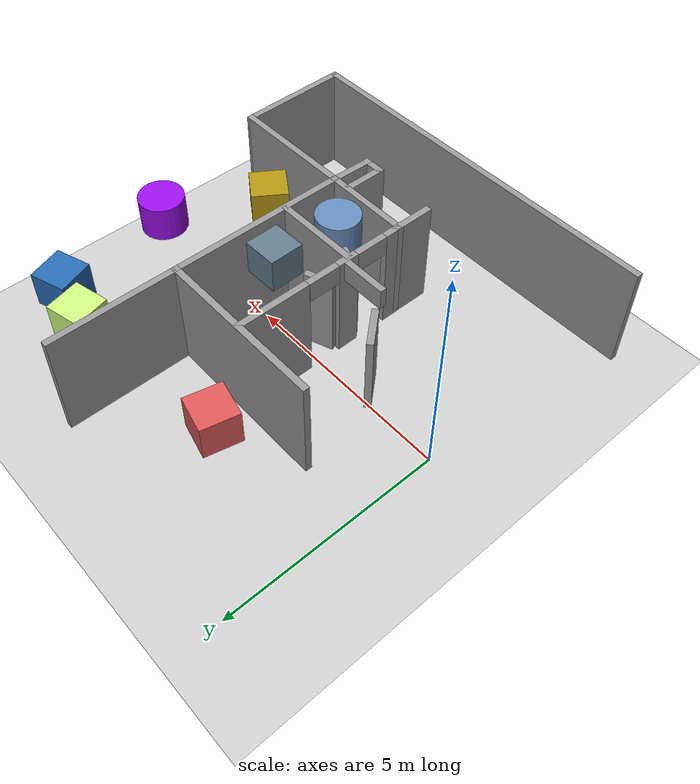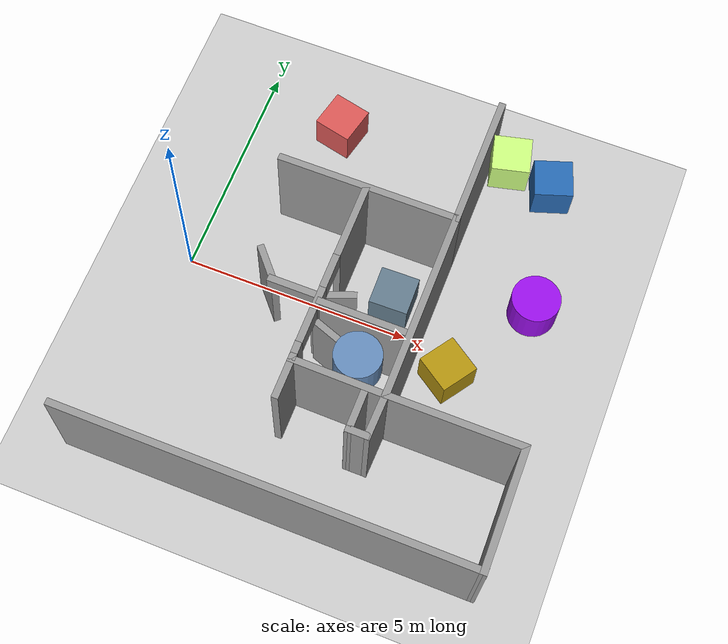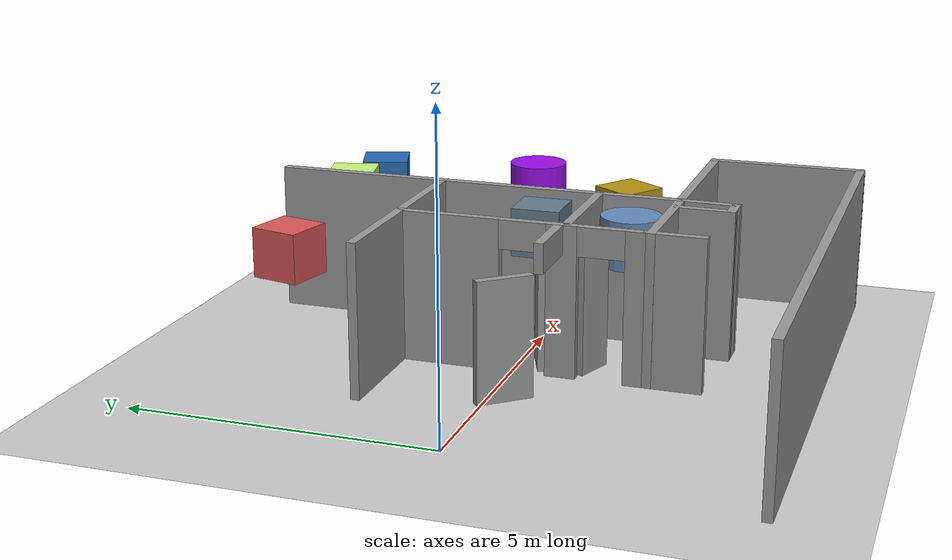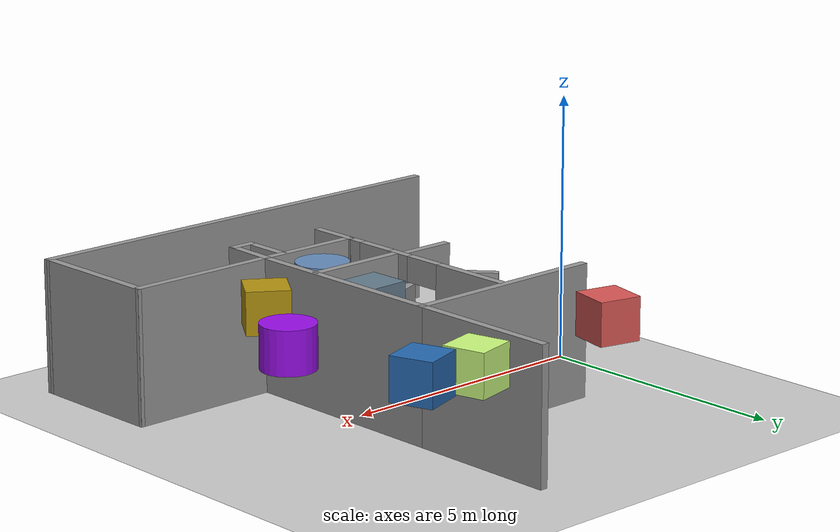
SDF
<sdf version="1.7">
 <world name="default">
  <model name="demo_clean">
   <static>1</static>
   <link name="Wall_10">
    <collision name="Wall_10_Collision">
     <geometry><box><size>3 0.15 2.5</size></box></geometry>
     <pose>0 0 1.25 0 -0 0</pose>
     <surface>
      <friction>
       <ode><mu>1</mu><mu2>1</mu2><fdir1>0 0 0</fdir1><slip1>0</slip1><slip2>0</slip2></ode>
       <torsional>
        <coefficient>1</coefficient>
        <patch_radius>0</patch_radius>
        <surface_radius>0</surface_radius>
        <use_patch_radius>1</use_patch_radius>
        <ode><slip>0</slip></ode>
       </torsional>
      </friction>
      <bounce><restitution_coefficient>0</restitution_coefficient><threshold>1e+06</threshold></bounce>
      <contact>
       <collide_without_contact>0</collide_without_contact>
       <collide_without_contact_bitmask>1</collide_without_contact_bitmask>
       <collide_bitmask>1</collide_bitmask>
       <ode>
        <soft_cfm>0</soft_cfm>
        <soft_erp>0.2</soft_erp>
        <kp>1e+13</kp>
        <kd>1</kd>
        <max_vel>0.01</max_vel>
        <min_depth>0</min_depth>
       </ode>
       <bullet>
        <split_impulse>1</split_impulse>
        <split_impulse_penetration_threshold>-0.01</split_impulse_penetration_threshold>
        <soft_cfm>0</soft_cfm>
        <soft_erp>0.2</soft_erp>
        <kp>1e+13</kp>
        <kd>1</kd>
       </bullet>
      </contact>
     </surface>
    </collision>
    <visual name="Wall_10_Visual">
     <geometry><box><size>3 0.15 2.5</size></box></geometry>
     <material>
      <script><name>Gazebo/Grey</name><uri>file://media/materials/scripts/gazebo.material</uri></script>
      <ambient>1 1 1 1</ambient>
      <shader type="pixel"><normal_map>default</normal_map></shader>
     </material>
     <pose>0 0 1.25 0 -0 0</pose>
    </visual>
    <pose>5.30351 3.31618 0 0 0 -1.5708</pose>
   </link>
   <link name="Wall_11">
    <collision name="Wall_11_Collision">
     <geometry><box><size>4 0.15 2.5</size></box></geometry>
     <pose>0 0 1.25 0 -0 0</pose>
     <surface>
      <friction>
       <ode><mu>1</mu><mu2>1</mu2><fdir1>0 0 0</fdir1><slip1>0</slip1><slip2>0</slip2></ode>
       <torsional>
        <coefficient>1</coefficient>
        <patch_radius>0</patch_radius>
        <surface_radius>0</surface_radius>
        <use_patch_radius>1</use_patch_radius>
        <ode><slip>0</slip></ode>
       </torsional>
      </friction>
      <bounce><restitution_coefficient>0</restitution_coefficient><threshold>1e+06</threshold></bounce>
      <contact>
       <collide_without_contact>0</collide_without_contact>
       <collide_without_contact_bitmask>1</collide_without_contact_bitmask>
       <collide_bitmask>1</collide_bitmask>
       <ode>
        <soft_cfm>0</soft_cfm>
        <soft_erp>0.2</soft_erp>
        <kp>1e+13</kp>
        <kd>1</kd>
        <max_vel>0.01</max_vel>
        <min_depth>0</min_depth>
       </ode>
       <bullet>
        <split_impulse>1</split_impulse>
        <split_impulse_penetration_threshold>-0.01</split_impulse_penetration_threshold>
        <soft_cfm>0</soft_cfm>
        <soft_erp>0.2</soft_erp>
        <kp>1e+13</kp>
        <kd>1</kd>
       </bullet>
      </contact>
     </surface>
    </collision>
    <visual name="Wall_11_Visual">
     <geometry><box><size>4 0.15 2.5</size></box></geometry>
     <material>
      <script><name>Gazebo/Grey</name><uri>file://media/materials/scripts/gazebo.material</uri></script>
      <ambient>1 1 1 1</ambient>
      <shader type="pixel"><normal_map>default</normal_map></shader>
     </material>
     <pose>0 0 1.25 0 -0 0</pose>
    </visual>
    <pose>3.37851 1.89118 0 0 -0 3.14159</pose>
   </link>
   <link name="Wall_13">
    <collision name="Wall_13_Collision">
     <geometry><box><size>4.25 0.15 2.5</size></box></geometry>
     <pose>0 0 1.25 0 -0 0</pose>
     <surface>
      <friction>
       <ode><mu>1</mu><mu2>1</mu2><fdir1>0 0 0</fdir1><slip1>0</slip1><slip2>0</slip2></ode>
       <torsional>
        <coefficient>1</coefficient>
        <patch_radius>0</patch_radius>
        <surface_radius>0</surface_radius>
        <use_patch_radius>1</use_patch_radius>
        <ode><slip>0</slip></ode>
       </torsional>
      </friction>
      <bounce><restitution_coefficient>0</restitution_coefficient><threshold>1e+06</threshold></bounce>
      <contact>
       <collide_without_contact>0</collide_without_contact>
       <collide_without_contact_bitmask>1</collide_without_contact_bitmask>
       <collide_bitmask>1</collide_bitmask>
       <ode>
        <soft_cfm>0</soft_cfm>
        <soft_erp>0.2</soft_erp>
        <kp>1e+13</kp>
        <kd>1</kd>
        <max_vel>0.01</max_vel>
        <min_depth>0</min_depth>
       </ode>
       <bullet>
        <split_impulse>1</split_impulse>
        <split_impulse_penetration_threshold>-0.01</split_impulse_penetration_threshold>
        <soft_cfm>0</soft_cfm>
        <soft_erp>0.2</soft_erp>
        <kp>1e+13</kp>
        <kd>1</kd>
       </bullet>
      </contact>
     </surface>
    </collision>
    <visual name="Wall_13_Visual">
     <geometry><box><size>4.25 0.15 2.5</size></box></geometry>
     <material>
      <script><name>Gazebo/Grey</name><uri>file://media/materials/scripts/gazebo.material</uri></script>
      <ambient>1 1 1 1</ambient>
      <shader type="pixel"><normal_map>default</normal_map></shader>
     </material>
     <pose>0 0 1.25 0 -0 0</pose>
    </visual>
    <pose>5.30351 -0.158824 0 0 0 -1.5708</pose>
   </link>
   <link name="Wall_14">
    <collision name="Wall_14_Collision">
     <geometry><box><size>3 0.15 2.5</size></box></geometry>
     <pose>0 0 1.25 0 -0 0</pose>
     <surface>
      <friction>
       <ode><mu>1</mu><mu2>1</mu2><fdir1>0 0 0</fdir1><slip1>0</slip1><slip2>0</slip2></ode>
       <torsional>
        <coefficient>1</coefficient>
        <patch_radius>0</patch_radius>
        <surface_radius>0</surface_radius>
        <use_patch_radius>1</use_patch_radius>
        <ode><slip>0</slip></ode>
       </torsional>
      </friction>
      <bounce><restitution_coefficient>0</restitution_coefficient><threshold>1e+06</threshold></bounce>
      <contact>
       <collide_without_contact>0</collide_without_contact>
       <collide_without_contact_bitmask>1</collide_without_contact_bitmask>
       <collide_bitmask>1</collide_bitmask>
       <ode>
        <soft_cfm>0</soft_cfm>
        <soft_erp>0.2</soft_erp>
        <kp>1e+13</kp>
        <kd>1</kd>
        <max_vel>0.01</max_vel>
        <min_depth>0</min_depth>
       </ode>
       <bullet>
        <split_impulse>1</split_impulse>
        <split_impulse_penetration_threshold>-0.01</split_impulse_penetration_threshold>
        <soft_cfm>0</soft_cfm>
        <soft_erp>0.2</soft_erp>
        <kp>1e+13</kp>
        <kd>1</kd>
       </bullet>
      </contact>
     </surface>
    </collision>
    <visual name="Wall_14_Visual">
     <geometry><box><size>3 0.15 2.5</size></box></geometry>
     <material>
      <script><name>Gazebo/Grey</name><uri>file://media/materials/scripts/gazebo.material</uri></script>
      <ambient>1 1 1 1</ambient>
      <shader type="pixel"><normal_map>default</normal_map></shader>
     </material>
     <pose>0 0 1.25 0 -0 0</pose>
    </visual>
    <pose>6.72851 -2.20882 0 0 -0 0</pose>
   </link>
   <link name="Wall_15">
    <collision name="Wall_15_Collision">
     <geometry><box><size>2.6816 0.15 2.5</size></box></geometry>
     <pose>0 0 1.25 0 -0 0</pose>
     <surface>
      <friction>
       <ode><mu>1</mu><mu2>1</mu2><fdir1>0 0 0</fdir1><slip1>0</slip1><slip2>0</slip2></ode>
       <torsional>
        <coefficient>1</coefficient>
        <patch_radius>0</patch_radius>
        <surface_radius>0</surface_radius>
        <use_patch_radius>1</use_patch_radius>
        <ode><slip>0</slip></ode>
       </torsional>
      </friction>
      <bounce><restitution_coefficient>0</restitution_coefficient><threshold>1e+06</threshold></bounce>
      <contact>
       <collide_without_contact>0</collide_without_contact>
       <collide_without_contact_bitmask>1</collide_without_contact_bitmask>
       <collide_bitmask>1</collide_bitmask>
       <ode>
        <soft_cfm>0</soft_cfm>
        <soft_erp>0.2</soft_erp>
        <kp>1e+13</kp>
        <kd>1</kd>
        <max_vel>0.01</max_vel>
        <min_depth>0</min_depth>
       </ode>
       <bullet>
        <split_impulse>1</split_impulse>
        <split_impulse_penetration_threshold>-0.01</split_impulse_penetration_threshold>
        <soft_cfm>0</soft_cfm>
        <soft_erp>0.2</soft_erp>
        <kp>1e+13</kp>
        <kd>1</kd>
       </bullet>
      </contact>
     </surface>
    </collision>
    <visual name="Wall_15_Visual">
     <geometry><box><size>2.6816 0.15 2.5</size></box></geometry>
     <material>
      <script><name>Gazebo/Grey</name><uri>file://media/materials/scripts/gazebo.material</uri></script>
      <ambient>1 1 1 1</ambient>
      <shader type="pixel"><normal_map>default</normal_map></shader>
     </material>
     <pose>0 0 1.25 0 -0 0</pose>
    </visual>
    <pose>8.16988 -3.47452 0 0 0 -1.55787</pose>
   </link>
   <link name="Wall_16">
    <collision name="Wall_16_Collision">
     <geometry><box><size>9 0.15 2.5</size></box></geometry>
     <pose>0 0 1.25 0 -0 0</pose>
     <surface>
      <friction>
       <ode><mu>1</mu><mu2>1</mu2><fdir1>0 0 0</fdir1><slip1>0</slip1><slip2>0</slip2></ode>
       <torsional>
        <coefficient>1</coefficient>
        <patch_radius>0</patch_radius>
        <surface_radius>0</surface_radius>
        <use_patch_radius>1</use_patch_radius>
        <ode><slip>0</slip></ode>
       </torsional>
      </friction>
      <bounce><restitution_coefficient>0</restitution_coefficient><threshold>1e+06</threshold></bounce>
      <contact>
       <collide_without_contact>0</collide_without_contact>
       <collide_without_contact_bitmask>1</collide_without_contact_bitmask>
       <collide_bitmask>1</collide_bitmask>
       <ode>
        <soft_cfm>0</soft_cfm>
        <soft_erp>0.2</soft_erp>
        <kp>1e+13</kp>
        <kd>1</kd>
        <max_vel>0.01</max_vel>
        <min_depth>0</min_depth>
       </ode>
       <bullet>
        <split_impulse>1</split_impulse>
        <split_impulse_penetration_threshold>-0.01</split_impulse_penetration_threshold>
        <soft_cfm>0</soft_cfm>
        <soft_erp>0.2</soft_erp>
        <kp>1e+13</kp>
        <kd>1</kd>
       </bullet>
      </contact>
     </surface>
    </collision>
    <visual name="Wall_16_Visual">
     <geometry><box><size>9 0.15 2.5</size></box></geometry>
     <material>
      <script><name>Gazebo/Grey</name><uri>file://media/materials/scripts/gazebo.material</uri></script>
      <ambient>1 1 1 1</ambient>
      <shader type="pixel"><normal_map>default</normal_map></shader>
     </material>
     <pose>0 0 1.25 0 -0 0</pose>
    </visual>
    <pose>3.76125 -4.74021 0 0 -0 3.14159</pose>
   </link>
   <link name="Wall_21_clone_0_clone_0_clone_clone_clone_clone">
    <gravity>0</gravity>
    <collision name="Wall_21_Collision">
     <geometry><box><size>0.924919 0.15 1.96033</size></box></geometry>
     <pose>0 0 1.25 0 -0 0</pose>
     <surface>
      <friction>
       <ode><mu>1</mu><mu2>1</mu2><fdir1>0 0 0</fdir1><slip1>0</slip1><slip2>0</slip2></ode>
       <torsional>
        <coefficient>1</coefficient>
        <patch_radius>0</patch_radius>
        <surface_radius>0</surface_radius>
        <use_patch_radius>1</use_patch_radius>
        <ode><slip>0</slip></ode>
       </torsional>
      </friction>
      <bounce><restitution_coefficient>0</restitution_coefficient><threshold>1e+06</threshold></bounce>
      <contact>
       <collide_without_contact>0</collide_without_contact>
       <collide_without_contact_bitmask>1</collide_without_contact_bitmask>
       <collide_bitmask>1</collide_bitmask>
       <ode>
        <soft_cfm>0</soft_cfm>
        <soft_erp>0.2</soft_erp>
        <kp>1e+13</kp>
        <kd>1</kd>
        <max_vel>0.01</max_vel>
        <min_depth>0</min_depth>
       </ode>
       <bullet>
        <split_impulse>1</split_impulse>
        <split_impulse_penetration_threshold>-0.01</split_impulse_penetration_threshold>
        <soft_cfm>0</soft_cfm>
        <soft_erp>0.2</soft_erp>
        <kp>1e+13</kp>
        <kd>1</kd>
       </bullet>
      </contact>
     </surface>
    </collision>
    <visual name="Wall_21_Visual">
     <geometry><box><size>0.924919 0.15 1.96033</size></box></geometry>
     <material>
      <script><name>Gazebo/Grey</name><uri>file://media/materials/scripts/gazebo.material</uri></script>
      <ambient>1 1 1 1</ambient>
      <shader type="pixel"><normal_map>__default__</normal_map></shader>
      <diffuse>0.7 0.7 0.7 1</diffuse>
      <specular>0.01 0.01 0.01 1</specular>
      <emissive>0 0 0 1</emissive>
     </material>
     <pose>0 0 1.25 0 -0 0</pose>
    </visual>
    <inertial>
     <inertia><ixx>0</ixx><iyy>0</iyy><izz>0</izz><ixy>0</ixy><ixz>0</ixz><iyz>0</iyz></inertia>
     <mass>1</mass>
    </inertial>
    <pose>2.0073 -0.280742 -0.23202 0 -0 2.28452</pose>
   </link>
   <link name="Wall_21_clone_0_clone_0_clone_clone_clone_clone_clone_clone_clone_clone">
    <gravity>0</gravity>
    <collision name="Wall_21_Collision">
     <geometry><box><size>0.663949 0.15 1.96033</size></box></geometry>
     <pose>0 0 1.25 0 -0 0</pose>
     <surface>
      <friction>
       <ode><mu>1</mu><mu2>1</mu2><fdir1>0 0 0</fdir1><slip1>0</slip1><slip2>0</slip2></ode>
       <torsional>
        <coefficient>1</coefficient>
        <patch_radius>0</patch_radius>
        <surface_radius>0</surface_radius>
        <use_patch_radius>1</use_patch_radius>
        <ode><slip>0</slip></ode>
       </torsional>
      </friction>
      <bounce><restitution_coefficient>0</restitution_coefficient><threshold>1e+06</threshold></bounce>
      <contact>
       <collide_without_contact>0</collide_without_contact>
       <collide_without_contact_bitmask>1</collide_without_contact_bitmask>
       <collide_bitmask>1</collide_bitmask>
       <ode>
        <soft_cfm>0</soft_cfm>
        <soft_erp>0.2</soft_erp>
        <kp>1e+13</kp>
        <kd>1</kd>
        <max_vel>0.01</max_vel>
        <min_depth>0</min_depth>
       </ode>
       <bullet>
        <split_impulse>1</split_impulse>
        <split_impulse_penetration_threshold>-0.01</split_impulse_penetration_threshold>
        <soft_cfm>0</soft_cfm>
        <soft_erp>0.2</soft_erp>
        <kp>1e+13</kp>
        <kd>1</kd>
       </bullet>
      </contact>
     </surface>
    </collision>
    <visual name="Wall_21_Visual">
     <geometry><box><size>0.663949 0.15 1.96033</size></box></geometry>
     <material>
      <script><name>Gazebo/Grey</name><uri>file://media/materials/scripts/gazebo.material</uri></script>
      <ambient>1 1 1 1</ambient>
      <shader type="pixel"><normal_map>__default__</normal_map></shader>
      <diffuse>0.7 0.7 0.7 1</diffuse>
      <specular>0.01 0.01 0.01 1</specular>
      <emissive>0 0 0 1</emissive>
     </material>
     <pose>0 0 1.25 0 -0 0</pose>
    </visual>
    <inertial>
     <inertia><ixx>0</ixx><iyy>0</iyy><izz>0</izz><ixy>0</ixy><ixz>0</ixz><iyz>0</iyz></inertia>
     <mass>1</mass>
    </inertial>
    <pose>3.68306 -1.18793 -0.23202 0 -0 2.79384</pose>
   </link>
   <link name="Wall_21_clone_0_clone_0_clone_clone_clone_clone_clone_clone_clone_clone_clone_clone">
    <gravity>0</gravity>
    <collision name="Wall_21_Collision">
     <geometry><box><size>0.663949 0.15 1.96033</size></box></geometry>
     <pose>0 0 1.25 0 -0 0</pose>
     <surface>
      <friction>
       <ode><mu>1</mu><mu2>1</mu2><fdir1>0 0 0</fdir1><slip1>0</slip1><slip2>0</slip2></ode>
       <torsional>
        <coefficient>1</coefficient>
        <patch_radius>0</patch_radius>
        <surface_radius>0</surface_radius>
        <use_patch_radius>1</use_patch_radius>
        <ode><slip>0</slip></ode>
       </torsional>
      </friction>
      <bounce><restitution_coefficient>0</restitution_coefficient><threshold>1e+06</threshold></bounce>
      <contact>
       <collide_without_contact>0</collide_without_contact>
       <collide_without_contact_bitmask>1</collide_without_contact_bitmask>
       <collide_bitmask>1</collide_bitmask>
       <ode>
        <soft_cfm>0</soft_cfm>
        <soft_erp>0.2</soft_erp>
        <kp>1e+13</kp>
        <kd>1</kd>
        <max_vel>0.01</max_vel>
        <min_depth>0</min_depth>
       </ode>
       <bullet>
        <split_impulse>1</split_impulse>
        <split_impulse_penetration_threshold>-0.01</split_impulse_penetration_threshold>
        <soft_cfm>0</soft_cfm>
        <soft_erp>0.2</soft_erp>
        <kp>1e+13</kp>
        <kd>1</kd>
       </bullet>
      </contact>
     </surface>
    </collision>
    <visual name="Wall_21_Visual">
     <geometry><box><size>0.663949 0.15 1.96033</size></box></geometry>
     <material>
      <script><name>Gazebo/Grey</name><uri>file://media/materials/scripts/gazebo.material</uri></script>
      <ambient>1 1 1 1</ambient>
      <shader type="pixel"><normal_map>__default__</normal_map></shader>
      <diffuse>0.7 0.7 0.7 1</diffuse>
      <specular>0.01 0.01 0.01 1</specular>
      <emissive>0 0 0 1</emissive>
     </material>
     <pose>0 0 1.25 0 -0 0</pose>
    </visual>
    <inertial>
     <inertia><ixx>0</ixx><iyy>0</iyy><izz>0</izz><ixy>0</ixy><ixz>0</ixz><iyz>0</iyz></inertia>
     <mass>1</mass>
    </inertial>
    <pose>3.65792 -0.364043 -0.23202 0 0 -2.77941</pose>
   </link>
   <link name="Wall_28_clone">
    <gravity>0</gravity>
    <collision name="Wall_28_Collision">
     <geometry><box><size>1.03415 0.15 0.476648</size></box></geometry>
     <pose>0 0 1.25 0 -0 0</pose>
     <surface>
      <friction>
       <ode><mu>1</mu><mu2>1</mu2><fdir1>0 0 0</fdir1><slip1>0</slip1><slip2>0</slip2></ode>
       <torsional>
        <coefficient>1</coefficient>
        <patch_radius>0</patch_radius>
        <surface_radius>0</surface_radius>
        <use_patch_radius>1</use_patch_radius>
        <ode><slip>0</slip></ode>
       </torsional>
      </friction>
      <bounce><restitution_coefficient>0</restitution_coefficient><threshold>1e+06</threshold></bounce>
      <contact>
       <collide_without_contact>0</collide_without_contact>
       <collide_without_contact_bitmask>1</collide_without_contact_bitmask>
       <collide_bitmask>1</collide_bitmask>
       <ode>
        <soft_cfm>0</soft_cfm>
        <soft_erp>0.2</soft_erp>
        <kp>1e+13</kp>
        <kd>1</kd>
        <max_vel>0.01</max_vel>
        <min_depth>0</min_depth>
       </ode>
       <bullet>
        <split_impulse>1</split_impulse>
        <split_impulse_penetration_threshold>-0.01</split_impulse_penetration_threshold>
        <soft_cfm>0</soft_cfm>
        <soft_erp>0.2</soft_erp>
        <kp>1e+13</kp>
        <kd>1</kd>
       </bullet>
      </contact>
     </surface>
    </collision>
    <visual name="Wall_28_Visual">
     <geometry><box><size>1.03415 0.15 0.476648</size></box></geometry>
     <material>
      <script><name>Gazebo/Grey</name><uri>file://media/materials/scripts/gazebo.material</uri></script>
      <ambient>1 1 1 1</ambient>
      <shader type="pixel"><normal_map>__default__</normal_map></shader>
      <diffuse>0.7 0.7 0.7 1</diffuse>
      <specular>0.01 0.01 0.01 1</specular>
      <emissive>0 0 0 1</emissive>
     </material>
     <pose>0 0 1.25 0 -0 0</pose>
    </visual>
    <inertial>
     <inertia><ixx>0</ixx><iyy>0</iyy><izz>0</izz><ixy>0</ixy><ixz>0</ixz><iyz>0</iyz></inertia>
     <mass>1</mass>
    </inertial>
    <pose>2.7476 -0.745235 1.01168 0 -0 0</pose>
   </link>
   <link name="Wall_28_clone_clone_clone_clone">
    <gravity>0</gravity>
    <collision name="Wall_28_Collision">
     <geometry><box><size>0.765639 0.15 0.476648</size></box></geometry>
     <pose>0 0 1.25 0 -0 0</pose>
     <surface>
      <friction>
       <ode><mu>1</mu><mu2>1</mu2><fdir1>0 0 0</fdir1><slip1>0</slip1><slip2>0</slip2></ode>
       <torsional>
        <coefficient>1</coefficient>
        <patch_radius>0</patch_radius>
        <surface_radius>0</surface_radius>
        <use_patch_radius>1</use_patch_radius>
        <ode><slip>0</slip></ode>
       </torsional>
      </friction>
      <bounce><restitution_coefficient>0</restitution_coefficient><threshold>1e+06</threshold></bounce>
      <contact>
       <collide_without_contact>0</collide_without_contact>
       <collide_without_contact_bitmask>1</collide_without_contact_bitmask>
       <collide_bitmask>1</collide_bitmask>
       <ode>
        <soft_cfm>0</soft_cfm>
        <soft_erp>0.2</soft_erp>
        <kp>1e+13</kp>
        <kd>1</kd>
        <max_vel>0.01</max_vel>
        <min_depth>0</min_depth>
       </ode>
       <bullet>
        <split_impulse>1</split_impulse>
        <split_impulse_penetration_threshold>-0.01</split_impulse_penetration_threshold>
        <soft_cfm>0</soft_cfm>
        <soft_erp>0.2</soft_erp>
        <kp>1e+13</kp>
        <kd>1</kd>
       </bullet>
      </contact>
     </surface>
    </collision>
    <visual name="Wall_28_Visual">
     <geometry><box><size>0.765639 0.15 0.476648</size></box></geometry>
     <material>
      <script><name>Gazebo/Grey</name><uri>file://media/materials/scripts/gazebo.material</uri></script>
      <ambient>1 1 1 1</ambient>
      <shader type="pixel"><normal_map>__default__</normal_map></shader>
     </material>
     <pose>0 0 1.25 0 -0 0</pose>
    </visual>
    <inertial>
     <inertia><ixx>0</ixx><iyy>0</iyy><izz>0</izz><ixy>0</ixy><ixz>0</ixz><iyz>0</iyz></inertia>
     <mass>1</mass>
    </inertial>
    <pose>3.33099 -1.42343 1.01168 0 0 -1.57004</pose>
   </link>
   <link name="Wall_28_clone_clone_clone_clone_clone">
    <gravity>0</gravity>
    <collision name="Wall_28_Collision">
     <geometry><box><size>0.765639 0.15 0.476648</size></box></geometry>
     <pose>0 0 1.25 0 -0 0</pose>
     <surface>
      <friction>
       <ode><mu>1</mu><mu2>1</mu2><fdir1>0 0 0</fdir1><slip1>0</slip1><slip2>0</slip2></ode>
       <torsional>
        <coefficient>1</coefficient>
        <patch_radius>0</patch_radius>
        <surface_radius>0</surface_radius>
        <use_patch_radius>1</use_patch_radius>
        <ode><slip>0</slip></ode>
       </torsional>
      </friction>
      <bounce><restitution_coefficient>0</restitution_coefficient><threshold>1e+06</threshold></bounce>
      <contact>
       <collide_without_contact>0</collide_without_contact>
       <collide_without_contact_bitmask>1</collide_without_contact_bitmask>
       <collide_bitmask>1</collide_bitmask>
       <ode>
        <soft_cfm>0</soft_cfm>
        <soft_erp>0.2</soft_erp>
        <kp>1e+13</kp>
        <kd>1</kd>
        <max_vel>0.01</max_vel>
        <min_depth>0</min_depth>
       </ode>
       <bullet>
        <split_impulse>1</split_impulse>
        <split_impulse_penetration_threshold>-0.01</split_impulse_penetration_threshold>
        <soft_cfm>0</soft_cfm>
        <soft_erp>0.2</soft_erp>
        <kp>1e+13</kp>
        <kd>1</kd>
       </bullet>
      </contact>
     </surface>
    </collision>
    <visual name="Wall_28_Visual">
     <geometry><box><size>0.765639 0.15 0.476648</size></box></geometry>
     <material>
      <script><name>Gazebo/Grey</name><uri>file://media/materials/scripts/gazebo.material</uri></script>
      <ambient>1 1 1 1</ambient>
      <shader type="pixel"><normal_map>__default__</normal_map></shader>
     </material>
     <pose>0 0 1.25 0 -0 0</pose>
    </visual>
    <inertial>
     <inertia><ixx>0</ixx><iyy>0</iyy><izz>0</izz><ixy>0</ixy><ixz>0</ixz><iyz>0</iyz></inertia>
     <mass>1</mass>
    </inertial>
    <pose>3.33099 -0.160303 1.01168 0 0 -1.57004</pose>
   </link>
   <link name="Wall_30">
    <collision name="Wall_30_Collision">
     <geometry><box><size>0.5 0.15 2.5</size></box></geometry>
     <pose>0 0 1.25 0 -0 0</pose>
     <surface>
      <friction>
       <ode><mu>1</mu><mu2>1</mu2><fdir1>0 0 0</fdir1><slip1>0</slip1><slip2>0</slip2></ode>
       <torsional>
        <coefficient>1</coefficient>
        <patch_radius>0</patch_radius>
        <surface_radius>0</surface_radius>
        <use_patch_radius>1</use_patch_radius>
        <ode><slip>0</slip></ode>
       </torsional>
      </friction>
      <bounce><restitution_coefficient>0</restitution_coefficient><threshold>1e+06</threshold></bounce>
      <contact>
       <collide_without_contact>0</collide_without_contact>
       <collide_without_contact_bitmask>1</collide_without_contact_bitmask>
       <collide_bitmask>1</collide_bitmask>
       <ode>
        <soft_cfm>0</soft_cfm>
        <soft_erp>0.2</soft_erp>
        <kp>1e+13</kp>
        <kd>1</kd>
        <max_vel>0.01</max_vel>
        <min_depth>0</min_depth>
       </ode>
       <bullet>
        <split_impulse>1</split_impulse>
        <split_impulse_penetration_threshold>-0.01</split_impulse_penetration_threshold>
        <soft_cfm>0</soft_cfm>
        <soft_erp>0.2</soft_erp>
        <kp>1e+13</kp>
        <kd>1</kd>
       </bullet>
      </contact>
     </surface>
    </collision>
    <visual name="Wall_30_Visual">
     <geometry><box><size>0.5 0.15 2.5</size></box></geometry>
     <material>
      <script><name>Gazebo/Grey</name><uri>file://media/materials/scripts/gazebo.material</uri></script>
      <ambient>1 1 1 1</ambient>
      <shader type="pixel"><normal_map>default</normal_map></shader>
     </material>
     <pose>0 0 1.25 0 -0 0</pose>
    </visual>
    <pose>3.33603 -0.791518 0 0 0 -1.5708</pose>
   </link>
   <link name="Wall_33">
    <collision name="Wall_33_Collision">
     <geometry><box><size>2 0.15 2.5</size></box></geometry>
     <pose>0 0 1.25 0 -0 0</pose>
     <surface>
      <friction>
       <ode><mu>1</mu><mu2>1</mu2><fdir1>0 0 0</fdir1><slip1>0</slip1><slip2>0</slip2></ode>
       <torsional>
        <coefficient>1</coefficient>
        <patch_radius>0</patch_radius>
        <surface_radius>0</surface_radius>
        <use_patch_radius>1</use_patch_radius>
        <ode><slip>0</slip></ode>
       </torsional>
      </friction>
      <bounce><restitution_coefficient>0</restitution_coefficient><threshold>1e+06</threshold></bounce>
      <contact>
       <collide_without_contact>0</collide_without_contact>
       <collide_without_contact_bitmask>1</collide_without_contact_bitmask>
       <collide_bitmask>1</collide_bitmask>
       <ode>
        <soft_cfm>0</soft_cfm>
        <soft_erp>0.2</soft_erp>
        <kp>1e+13</kp>
        <kd>1</kd>
        <max_vel>0.01</max_vel>
        <min_depth>0</min_depth>
       </ode>
       <bullet>
        <split_impulse>1</split_impulse>
        <split_impulse_penetration_threshold>-0.01</split_impulse_penetration_threshold>
        <soft_cfm>0</soft_cfm>
        <soft_erp>0.2</soft_erp>
        <kp>1e+13</kp>
        <kd>1</kd>
       </bullet>
      </contact>
     </surface>
    </collision>
    <visual name="Wall_33_Visual">
     <geometry><box><size>2 0.15 2.5</size></box></geometry>
     <material>
      <script><name>Gazebo/Grey</name><uri>file://media/materials/scripts/gazebo.material</uri></script>
      <ambient>1 1 1 1</ambient>
      <shader type="pixel"><normal_map>default</normal_map></shader>
     </material>
     <pose>0 0 1.25 0 -0 0</pose>
    </visual>
    <pose>4.32187 -0.846909 0 0 -0 3.14159</pose>
   </link>
   <link name="Wall_35">
    <collision name="Wall_35_Collision">
     <geometry><box><size>2.12444 0.15 2.5</size></box></geometry>
     <pose>0 0 1.25 0 -0 0</pose>
     <surface>
      <friction>
       <ode><mu>1</mu><mu2>1</mu2><fdir1>0 0 0</fdir1><slip1>0</slip1><slip2>0</slip2></ode>
       <torsional>
        <coefficient>1</coefficient>
        <patch_radius>0</patch_radius>
        <surface_radius>0</surface_radius>
        <use_patch_radius>1</use_patch_radius>
        <ode><slip>0</slip></ode>
       </torsional>
      </friction>
      <bounce><restitution_coefficient>0</restitution_coefficient><threshold>1e+06</threshold></bounce>
      <contact>
       <collide_without_contact>0</collide_without_contact>
       <collide_without_contact_bitmask>1</collide_without_contact_bitmask>
       <collide_bitmask>1</collide_bitmask>
       <ode>
        <soft_cfm>0</soft_cfm>
        <soft_erp>0.2</soft_erp>
        <kp>1e+13</kp>
        <kd>1</kd>
        <max_vel>0.01</max_vel>
        <min_depth>0</min_depth>
       </ode>
       <bullet>
        <split_impulse>1</split_impulse>
        <split_impulse_penetration_threshold>-0.01</split_impulse_penetration_threshold>
        <soft_cfm>0</soft_cfm>
        <soft_erp>0.2</soft_erp>
        <kp>1e+13</kp>
        <kd>1</kd>
       </bullet>
      </contact>
     </surface>
    </collision>
    <visual name="Wall_35_Visual">
     <geometry><box><size>2.12444 0.15 2.5</size></box></geometry>
     <material>
      <script><name>Gazebo/Grey</name><uri>file://media/materials/scripts/gazebo.material</uri></script>
      <ambient>1 1 1 1</ambient>
      <shader type="pixel"><normal_map>default</normal_map></shader>
     </material>
     <pose>0 0 1.25 0 -0 0</pose>
    </visual>
    <pose>4.31686 -2.19973 0 0 -0 3.13123</pose>
   </link>
   <link name="Wall_40">
    <collision name="Wall_40_Collision">
     <geometry><box><size>1 0.15 2.5</size></box></geometry>
     <pose>0 0 1.25 0 -0 0</pose>
     <surface>
      <friction>
       <ode><mu>1</mu><mu2>1</mu2><fdir1>0 0 0</fdir1><slip1>0</slip1><slip2>0</slip2></ode>
       <torsional>
        <coefficient>1</coefficient>
        <patch_radius>0</patch_radius>
        <surface_radius>0</surface_radius>
        <use_patch_radius>1</use_patch_radius>
        <ode><slip>0</slip></ode>
       </torsional>
      </friction>
      <bounce><restitution_coefficient>0</restitution_coefficient><threshold>1e+06</threshold></bounce>
      <contact>
       <collide_without_contact>0</collide_without_contact>
       <collide_without_contact_bitmask>1</collide_without_contact_bitmask>
       <collide_bitmask>1</collide_bitmask>
       <ode>
        <soft_cfm>0</soft_cfm>
        <soft_erp>0.2</soft_erp>
        <kp>1e+13</kp>
        <kd>1</kd>
        <max_vel>0.01</max_vel>
        <min_depth>0</min_depth>
       </ode>
       <bullet>
        <split_impulse>1</split_impulse>
        <split_impulse_penetration_threshold>-0.01</split_impulse_penetration_threshold>
        <soft_cfm>0</soft_cfm>
        <soft_erp>0.2</soft_erp>
        <kp>1e+13</kp>
        <kd>1</kd>
       </bullet>
      </contact>
     </surface>
    </collision>
    <visual name="Wall_40_Visual">
     <geometry><box><size>1 0.15 2.5</size></box></geometry>
     <material>
      <script><name>Gazebo/Grey</name><uri>file://media/materials/scripts/gazebo.material</uri></script>
      <ambient>1 1 1 1</ambient>
      <shader type="pixel"><normal_map>default</normal_map></shader>
     </material>
     <pose>0 0 1.25 0 -0 0</pose>
    </visual>
    <pose>4.89119 -2.69073 0 0 0 -1.57324</pose>
   </link>
   <link name="Wall_41">
    <collision name="Wall_41_Collision">
     <geometry><box><size>0.5 0.15 2.5</size></box></geometry>
     <pose>0 0 1.25 0 -0 0</pose>
     <surface>
      <friction>
       <ode><mu>1</mu><mu2>1</mu2><fdir1>0 0 0</fdir1><slip1>0</slip1><slip2>0</slip2></ode>
       <torsional>
        <coefficient>1</coefficient>
        <patch_radius>0</patch_radius>
        <surface_radius>0</surface_radius>
        <use_patch_radius>1</use_patch_radius>
        <ode><slip>0</slip></ode>
       </torsional>
      </friction>
      <bounce><restitution_coefficient>0</restitution_coefficient><threshold>1e+06</threshold></bounce>
      <contact>
       <collide_without_contact>0</collide_without_contact>
       <collide_without_contact_bitmask>1</collide_without_contact_bitmask>
       <collide_bitmask>1</collide_bitmask>
       <ode>
        <soft_cfm>0</soft_cfm>
        <soft_erp>0.2</soft_erp>
        <kp>1e+13</kp>
        <kd>1</kd>
        <max_vel>0.01</max_vel>
        <min_depth>0</min_depth>
       </ode>
       <bullet>
        <split_impulse>1</split_impulse>
        <split_impulse_penetration_threshold>-0.01</split_impulse_penetration_threshold>
        <soft_cfm>0</soft_cfm>
        <soft_erp>0.2</soft_erp>
        <kp>1e+13</kp>
        <kd>1</kd>
       </bullet>
      </contact>
     </surface>
    </collision>
    <visual name="Wall_41_Visual">
     <geometry><box><size>0.5 0.15 2.5</size></box></geometry>
     <material>
      <script><name>Gazebo/Grey</name><uri>file://media/materials/scripts/gazebo.material</uri></script>
      <ambient>1 1 1 1</ambient>
      <shader type="pixel"><normal_map>default</normal_map></shader>
     </material>
     <pose>0 0 1.25 0 -0 0</pose>
    </visual>
    <pose>5.06619 -3.11573 0 0 -0 0</pose>
   </link>
   <link name="Wall_42">
    <collision name="Wall_42_Collision">
     <geometry><box><size>1.05905 0.15 2.5</size></box></geometry>
     <pose>0 0 1.25 0 -0 0</pose>
     <surface>
      <friction>
       <ode><mu>1</mu><mu2>1</mu2><fdir1>0 0 0</fdir1><slip1>0</slip1><slip2>0</slip2></ode>
       <torsional>
        <coefficient>1</coefficient>
        <patch_radius>0</patch_radius>
        <surface_radius>0</surface_radius>
        <use_patch_radius>1</use_patch_radius>
        <ode><slip>0</slip></ode>
       </torsional>
      </friction>
      <bounce><restitution_coefficient>0</restitution_coefficient><threshold>1e+06</threshold></bounce>
      <contact>
       <collide_without_contact>0</collide_without_contact>
       <collide_without_contact_bitmask>1</collide_without_contact_bitmask>
       <collide_bitmask>1</collide_bitmask>
       <ode>
        <soft_cfm>0</soft_cfm>
        <soft_erp>0.2</soft_erp>
        <kp>1e+13</kp>
        <kd>1</kd>
        <max_vel>0.01</max_vel>
        <min_depth>0</min_depth>
       </ode>
       <bullet>
        <split_impulse>1</split_impulse>
        <split_impulse_penetration_threshold>-0.01</split_impulse_penetration_threshold>
        <soft_cfm>0</soft_cfm>
        <soft_erp>0.2</soft_erp>
        <kp>1e+13</kp>
        <kd>1</kd>
       </bullet>
      </contact>
     </surface>
    </collision>
    <visual name="Wall_42_Visual">
     <geometry><box><size>1.05905 0.15 2.5</size></box></geometry>
     <material>
      <script><name>Gazebo/Grey</name><uri>file://media/materials/scripts/gazebo.material</uri></script>
      <ambient>1 1 1 1</ambient>
      <shader type="pixel"><normal_map>default</normal_map></shader>
     </material>
     <pose>0 0 1.25 0 -0 0</pose>
    </visual>
    <pose>5.28364 -2.66264 0 0 -0 1.53905</pose>
   </link>
   <link name="Wall_46">
    <collision name="Wall_46_Collision">
     <geometry><box><size>1.75 0.15 2.5</size></box></geometry>
     <pose>0 0 1.25 0 -0 0</pose>
     <surface>
      <friction>
       <ode><mu>1</mu><mu2>1</mu2><fdir1>0 0 0</fdir1><slip1>0</slip1><slip2>0</slip2></ode>
       <torsional>
        <coefficient>1</coefficient>
        <patch_radius>0</patch_radius>
        <surface_radius>0</surface_radius>
        <use_patch_radius>1</use_patch_radius>
        <ode><slip>0</slip></ode>
       </torsional>
      </friction>
      <bounce><restitution_coefficient>0</restitution_coefficient><threshold>1e+06</threshold></bounce>
      <contact>
       <collide_without_contact>0</collide_without_contact>
       <collide_without_contact_bitmask>1</collide_without_contact_bitmask>
       <collide_bitmask>1</collide_bitmask>
       <ode>
        <soft_cfm>0</soft_cfm>
        <soft_erp>0.2</soft_erp>
        <kp>1e+13</kp>
        <kd>1</kd>
        <max_vel>0.01</max_vel>
        <min_depth>0</min_depth>
       </ode>
       <bullet>
        <split_impulse>1</split_impulse>
        <split_impulse_penetration_threshold>-0.01</split_impulse_penetration_threshold>
        <soft_cfm>0</soft_cfm>
        <soft_erp>0.2</soft_erp>
        <kp>1e+13</kp>
        <kd>1</kd>
       </bullet>
      </contact>
     </surface>
    </collision>
    <visual name="Wall_46_Visual">
     <geometry><box><size>1.75 0.15 2.5</size></box></geometry>
     <material>
      <script><name>Gazebo/Grey</name><uri>file://media/materials/scripts/gazebo.material</uri></script>
      <ambient>1 1 1 1</ambient>
      <shader type="pixel"><normal_map>default</normal_map></shader>
     </material>
     <pose>0 0 1.25 0 -0 0</pose>
    </visual>
    <pose>3.33603 1.08929 0 0 0 -1.5708</pose>
   </link>
   <link name="Wall_48">
    <collision name="Wall_48_Collision">
     <geometry><box><size>0.15 0.15 2.5</size></box></geometry>
     <pose>0 0 1.25 0 -0 0</pose>
     <surface>
      <friction>
       <ode><mu>1</mu><mu2>1</mu2><fdir1>0 0 0</fdir1><slip1>0</slip1><slip2>0</slip2></ode>
       <torsional>
        <coefficient>1</coefficient>
        <patch_radius>0</patch_radius>
        <surface_radius>0</surface_radius>
        <use_patch_radius>1</use_patch_radius>
        <ode><slip>0</slip></ode>
       </torsional>
      </friction>
      <bounce><restitution_coefficient>0</restitution_coefficient><threshold>1e+06</threshold></bounce>
      <contact>
       <collide_without_contact>0</collide_without_contact>
       <collide_without_contact_bitmask>1</collide_without_contact_bitmask>
       <collide_bitmask>1</collide_bitmask>
       <ode>
        <soft_cfm>0</soft_cfm>
        <soft_erp>0.2</soft_erp>
        <kp>1e+13</kp>
        <kd>1</kd>
        <max_vel>0.01</max_vel>
        <min_depth>0</min_depth>
       </ode>
       <bullet>
        <split_impulse>1</split_impulse>
        <split_impulse_penetration_threshold>-0.01</split_impulse_penetration_threshold>
        <soft_cfm>0</soft_cfm>
        <soft_erp>0.2</soft_erp>
        <kp>1e+13</kp>
        <kd>1</kd>
       </bullet>
      </contact>
     </surface>
    </collision>
    <visual name="Wall_48_Visual">
     <geometry><box><size>0.15 0.15 2.5</size></box></geometry>
     <material>
      <script><name>Gazebo/Grey</name><uri>file://media/materials/scripts/gazebo.material</uri></script>
      <ambient>1 1 1 1</ambient>
      <shader type="pixel"><normal_map>default</normal_map></shader>
     </material>
     <pose>0 0 1.25 0 -0 0</pose>
    </visual>
    <pose>3.33073 -2.13943 0 0 -0 0</pose>
   </link>
   <link name="Wall_49">
    <collision name="Wall_49_Collision">
     <geometry><box><size>1 0.15 2.5</size></box></geometry>
     <pose>0 0 1.25 0 -0 0</pose>
     <surface>
      <friction>
       <ode><mu>1</mu><mu2>1</mu2><fdir1>0 0 0</fdir1><slip1>0</slip1><slip2>0</slip2></ode>
       <torsional>
        <coefficient>1</coefficient>
        <patch_radius>0</patch_radius>
        <surface_radius>0</surface_radius>
        <use_patch_radius>1</use_patch_radius>
        <ode><slip>0</slip></ode>
       </torsional>
      </friction>
      <bounce><restitution_coefficient>0</restitution_coefficient><threshold>1e+06</threshold></bounce>
      <contact>
       <collide_without_contact>0</collide_without_contact>
       <collide_without_contact_bitmask>1</collide_without_contact_bitmask>
       <collide_bitmask>1</collide_bitmask>
       <ode>
        <soft_cfm>0</soft_cfm>
        <soft_erp>0.2</soft_erp>
        <kp>1e+13</kp>
        <kd>1</kd>
        <max_vel>0.01</max_vel>
        <min_depth>0</min_depth>
       </ode>
       <bullet>
        <split_impulse>1</split_impulse>
        <split_impulse_penetration_threshold>-0.01</split_impulse_penetration_threshold>
        <soft_cfm>0</soft_cfm>
        <soft_erp>0.2</soft_erp>
        <kp>1e+13</kp>
        <kd>1</kd>
       </bullet>
      </contact>
     </surface>
    </collision>
    <visual name="Wall_49_Visual">
     <geometry><box><size>1 0.15 2.5</size></box></geometry>
     <material>
      <script><name>Gazebo/Grey</name><uri>file://media/materials/scripts/gazebo.material</uri></script>
      <ambient>1 1 1 1</ambient>
      <shader type="pixel"><normal_map>default</normal_map></shader>
     </material>
     <pose>0 0 1.25 0 -0 0</pose>
    </visual>
    <pose>3.33073 -2.56443 0 0 0 -1.5708</pose>
   </link>
   <link name="Wall_51">
    <collision name="Wall_51_Collision">
     <geometry><box><size>0.412102 0.15 2.5</size></box></geometry>
     <pose>0 0 1.25 0 -0 0</pose>
     <surface>
      <friction>
       <ode><mu>1</mu><mu2>1</mu2><fdir1>0 0 0</fdir1><slip1>0</slip1><slip2>0</slip2></ode>
       <torsional>
        <coefficient>1</coefficient>
        <patch_radius>0</patch_radius>
        <surface_radius>0</surface_radius>
        <use_patch_radius>1</use_patch_radius>
        <ode><slip>0</slip></ode>
       </torsional>
      </friction>
      <bounce><restitution_coefficient>0</restitution_coefficient><threshold>1e+06</threshold></bounce>
      <contact>
       <collide_without_contact>0</collide_without_contact>
       <collide_without_contact_bitmask>1</collide_without_contact_bitmask>
       <collide_bitmask>1</collide_bitmask>
       <ode>
        <soft_cfm>0</soft_cfm>
        <soft_erp>0.2</soft_erp>
        <kp>1e+13</kp>
        <kd>1</kd>
        <max_vel>0.01</max_vel>
        <min_depth>0</min_depth>
       </ode>
       <bullet>
        <split_impulse>1</split_impulse>
        <split_impulse_penetration_threshold>-0.01</split_impulse_penetration_threshold>
        <soft_cfm>0</soft_cfm>
        <soft_erp>0.2</soft_erp>
        <kp>1e+13</kp>
        <kd>1</kd>
       </bullet>
      </contact>
     </surface>
    </collision>
    <visual name="Wall_51_Visual">
     <geometry><box><size>0.412102 0.15 2.5</size></box></geometry>
     <material>
      <script><name>Gazebo/Grey</name><uri>file://media/materials/scripts/gazebo.material</uri></script>
      <ambient>1 1 1 1</ambient>
      <shader type="pixel"><normal_map>default</normal_map></shader>
     </material>
     <pose>0 0 1.25 0 -0 0</pose>
    </visual>
    <pose>3.3292 -2.00839 0 0 0 -1.55914</pose>
   </link>
  </model>
  <model name="dyn_box">
   <pose>2.25014 3.31272 2 0 0 -0.228187</pose>
   <static>1</static>
   <allow_auto_disable>0</allow_auto_disable>
   <link name="link">
    <collision name="collision">
     <geometry><box><size>0.8 0.8 0.8</size></box></geometry>
     <max_contacts>20</max_contacts>
    </collision>
    <visual name="visual">
     <geometry><box><size>0.8 0.8 0.8</size></box></geometry>
     <material>
      <ambient>0.858824 0.345098 0.337255 1</ambient>
      <diffuse>0.858824 0.345098 0.337255 1</diffuse>
     </material>
    </visual>
   </link>
  </model>
  <model name="dyn_box_2">
   <pose>5.87268 3.78915 2 0 0 -1.33062</pose>
   <static>1</static>
   <allow_auto_disable>0</allow_auto_disable>
   <link name="link">
    <collision name="collision">
     <geometry><box><size>0.8 0.8 0.8</size></box></geometry>
     <max_contacts>20</max_contacts>
    </collision>
    <visual name="visual">
     <geometry><box><size>0.8 0.8 0.8</size></box></geometry>
     <material><ambient>0.8 0.992157 0.498039 1</ambient><diffuse>0.8 0.992157 0.498039 1</diffuse></material>
    </visual>
   </link>
  </model>
  <model name="dyn_box_3">
   <pose>6.85615 3.56028 2 0 -0 0.327067</pose>
   <static>1</static>
   <allow_auto_disable>0</allow_auto_disable>
   <link name="link">
    <collision name="collision">
     <geometry><box><size>0.8 0.8 0.8</size></box></geometry>
     <max_contacts>20</max_contacts>
    </collision>
    <visual name="visual">
     <geometry><box><size>0.8 0.8 0.8</size></box></geometry>
     <material>
      <ambient>0.152941 0.415686 0.701961 1</ambient>
      <diffuse>0.152941 0.415686 0.701961 1</diffuse>
     </material>
    </visual>
   </link>
  </model>
  <model name="dyn_box_4">
   <pose>6.20579 -1.12359 2 0 0 -2.16588</pose>
   <static>1</static>
   <allow_auto_disable>0</allow_auto_disable>
   <link name="link">
    <collision name="collision">
     <geometry><box><size>0.8 0.8 0.8</size></box></geometry>
     <max_contacts>20</max_contacts>
    </collision>
    <visual name="visual">
     <geometry><box><size>0.8 0.8 0.8</size></box></geometry>
     <material>
      <ambient>0.709804 0.580392 0.0627451 1</ambient>
      <diffuse>0.709804 0.580392 0.0627451 1</diffuse>
     </material>
    </visual>
   </link>
  </model>
  <model name="static_cylinder_2">
   <pose>7.37178 0.833273 2 0 0 -1.3744</pose>
   <static>1</static>
   <allow_auto_disable>0</allow_auto_disable>
   <link name="link">
    <collision name="collision">
     <geometry><cylinder><radius>0.5</radius><length>0.8</length></cylinder></geometry>
     <max_contacts>20</max_contacts>
    </collision>
    <visual name="visual">
     <geometry><cylinder><radius>0.5</radius><length>0.8</length></cylinder></geometry>
     <material>
      <ambient>0.603922 0.054902 0.917647 1</ambient>
      <diffuse>0.603922 0.054902 0.917647 1</diffuse>
     </material>
    </visual>
   </link>
  </model>
  <model name="dyn_box_5">
   <pose>4.67662 -0.046873 2 0 -0 0.017447</pose>
   <static>1</static>
   <allow_auto_disable>0</allow_auto_disable>
   <link name="link">
    <collision name="collision">
     <geometry><box><size>0.8 0.8 0.8</size></box></geometry>
     <max_contacts>20</max_contacts>
    </collision>
    <visual name="visual">
     <geometry><box><size>0.8 0.8 0.8</size></box></geometry>
     <material>
      <ambient>0.392157 0.490196 0.556863 1</ambient>
      <diffuse>0.392157 0.490196 0.556863 1</diffuse>
     </material>
    </visual>
   </link>
  </model>
  <model name="static_cylinder_4">
   <pose>4.49487 -1.59567 2 0 -0 2.35291</pose>
   <static>1</static>
   <allow_auto_disable>0</allow_auto_disable>
   <link name="link">
    <collision name="collision">
     <geometry><cylinder><radius>0.5</radius><length>0.8</length></cylinder></geometry>
     <max_contacts>20</max_contacts>
    </collision>
    <visual name="visual">
     <geometry><cylinder><radius>0.5</radius><length>0.8</length></cylinder></geometry>
     <material>
      <ambient>0.396078 0.54902 0.733333 1</ambient>
      <diffuse>0.396078 0.54902 0.733333 1</diffuse>
     </material>
    </visual>
   </link>
  </model>
  <model name="ground_plane">
   <static>1</static>
   <link name="link">
    <collision name="collision">
     <geometry><plane><normal>0 0 1</normal><size>100 100</size></plane></geometry>
     <surface>
      <contact><collide_bitmask>65535</collide_bitmask></contact>
      <friction><ode><mu>100</mu><mu2>50</mu2></ode></friction>
     </surface>
    </collision>
    <visual name="visual">
     <cast_shadows>0</cast_shadows>
     <geometry><plane><normal>0 0 1</normal><size>100 100</size></plane></geometry>
     <material>
      <script><uri>file://media/materials/scripts/gazebo.material</uri><name>Gazebo/Grey</name></script>
     </material>
    </visual>
   </link>
  </model>
 </world>
</sdf>
